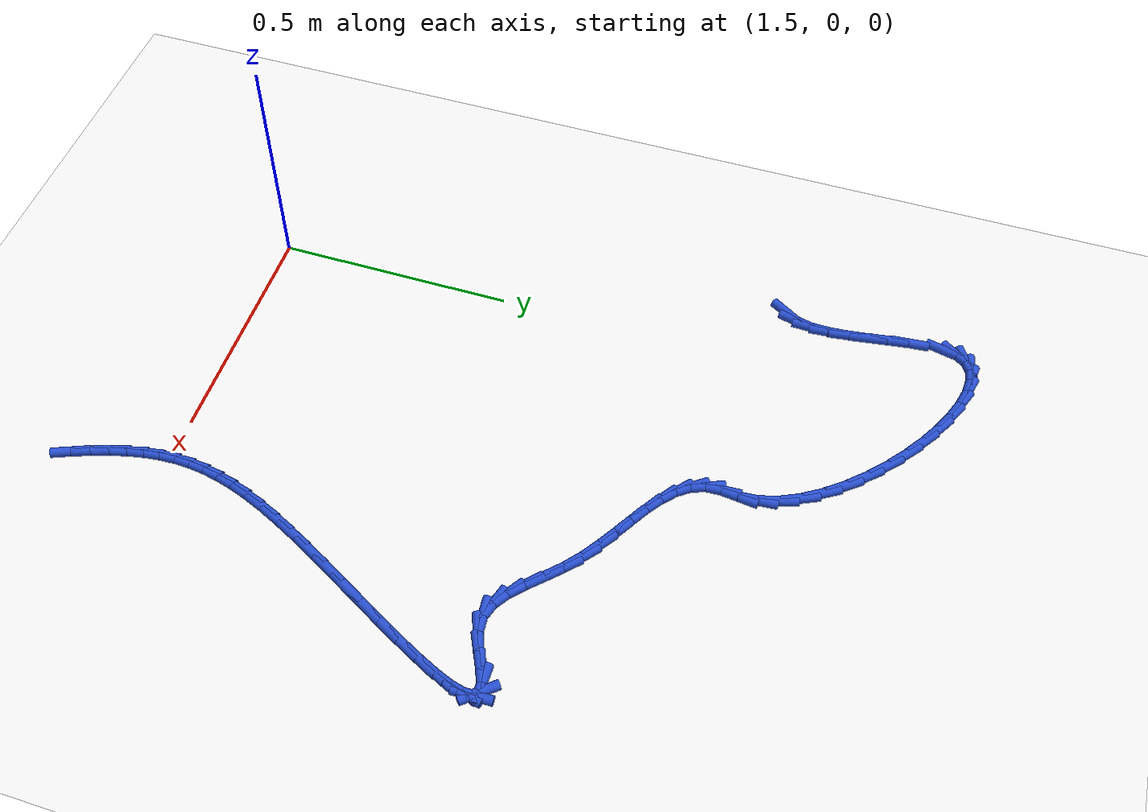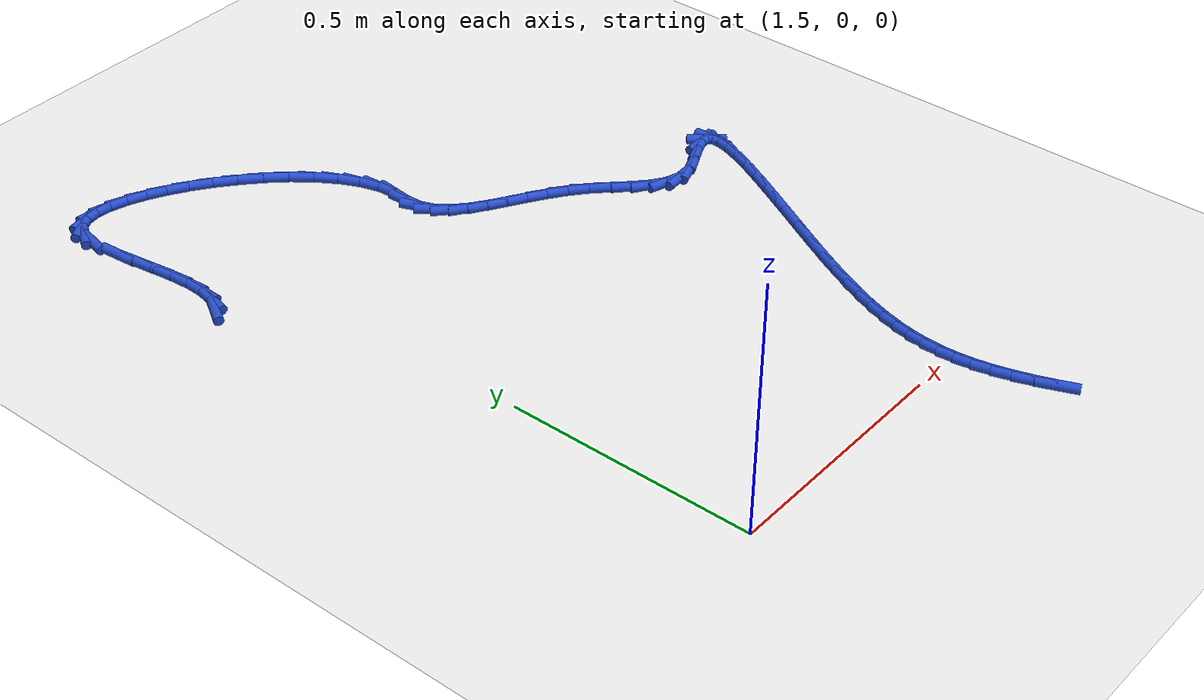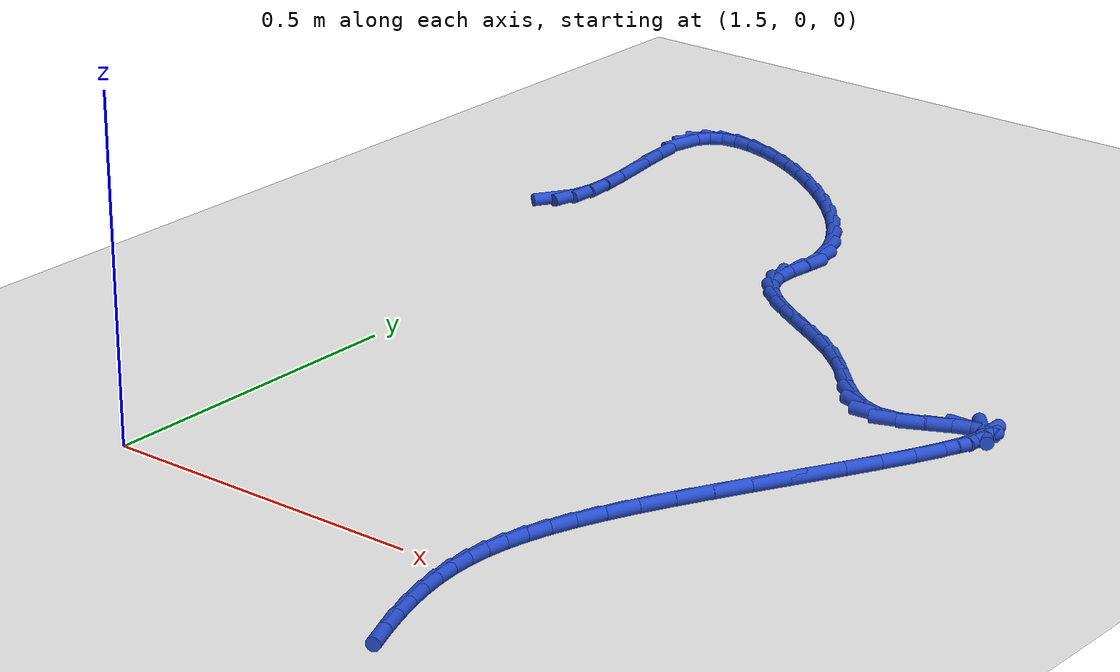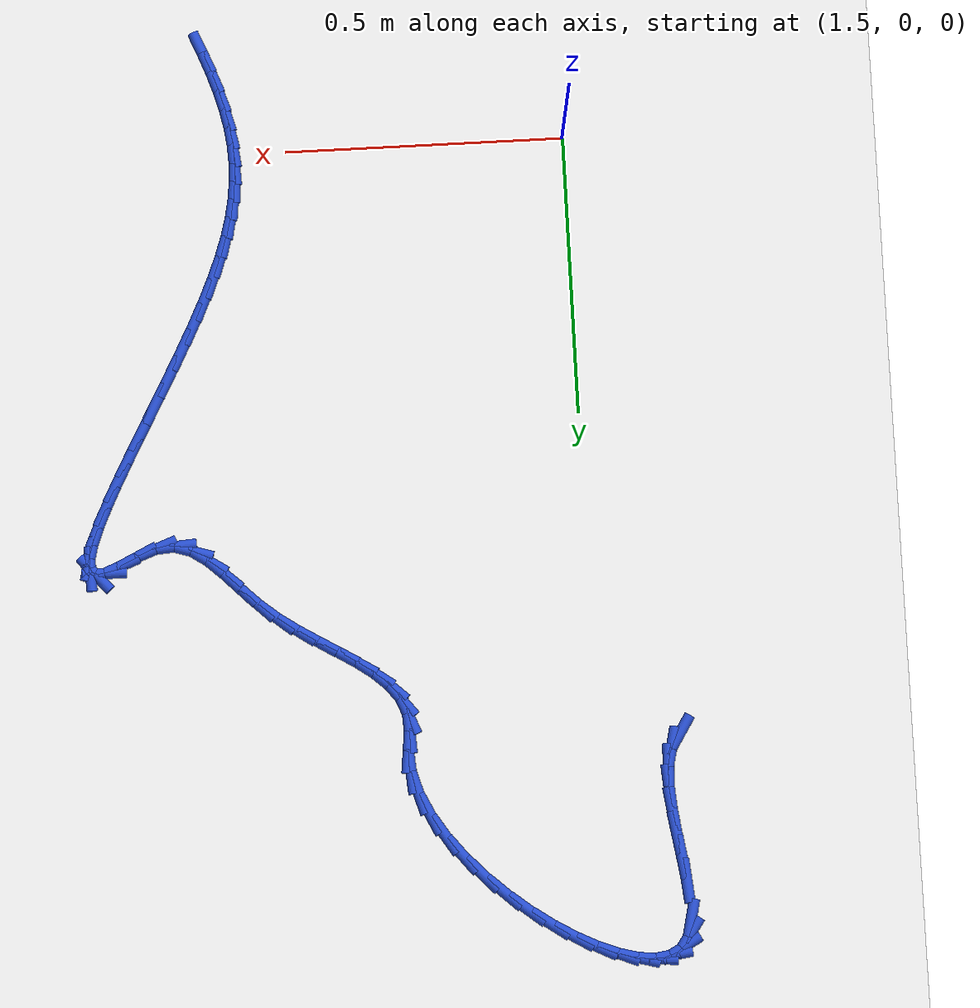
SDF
<sdf version="1.6">
 <world name="default">
  <model name="ground_plane">
   <static>1</static>
   <link name="link">
    <collision name="collision">
     <geometry><plane><normal>0 0 1</normal><size>100 100</size></plane></geometry>
     <surface><friction><ode><mu>100</mu><mu2>50</mu2></ode></friction></surface>
    </collision>
    <visual name="visual">
     <cast_shadows>0</cast_shadows>
     <geometry><plane><normal>0 0 1</normal><size>100 100</size></plane></geometry>
     <material>
      <script><uri>file://media/materials/scripts/gazebo.material</uri><name>Gazebo/WhiteGlow</name></script>
     </material>
    </visual>
   </link>
  </model>
  <model name="line">
   <link name="link_64">
    <pose>1.3541020919847546 1.090133616776462 0.01 0 1.57 1.0114527236162802</pose>
    <collision name="collision">
     <geometry><cylinder><radius>0.01</radius><length>0.08</length></cylinder></geometry>
    </collision>
    <visual name="visual">
     <material>
      <script><name>Gazebo/Blue</name><uri>file://media/materials/scripts/gazebo.material</uri></script>
     </material>
     <geometry><cylinder><radius>0.01</radius><length>0.08</length></cylinder></geometry>
    </visual>
   </link>
   <link name="link_65">
    <pose>1.368814050372023 1.1136338147988292 0.01 0 1.57 1.3456189995589798</pose>
    <collision name="collision">
     <geometry><cylinder><radius>0.01</radius><length>0.08</length></cylinder></geometry>
    </collision>
    <visual name="visual">
     <material>
      <script><name>Gazebo/Blue</name><uri>file://media/materials/scripts/gazebo.material</uri></script>
     </material>
     <geometry><cylinder><radius>0.01</radius><length>0.08</length></cylinder></geometry>
    </visual>
   </link>
   <link name="link_66">
    <pose>1.3758993001423114 1.1445653964326998 0.01 0 1.57 1.5400175159806568</pose>
    <collision name="collision">
     <geometry><cylinder><radius>0.01</radius><length>0.08</length></cylinder></geometry>
    </collision>
    <visual name="visual">
     <material>
      <script><name>Gazebo/Blue</name><uri>file://media/materials/scripts/gazebo.material</uri></script>
     </material>
     <geometry><cylinder><radius>0.01</radius><length>0.08</length></cylinder></geometry>
    </visual>
   </link>
   <link name="link_67">
    <pose>1.377026693348663 1.1811827038474247 0.01 0 1.57 -1.4929996170355078</pose>
    <collision name="collision">
     <geometry><cylinder><radius>0.01</radius><length>0.08</length></cylinder></geometry>
    </collision>
    <visual name="visual">
     <material>
      <script><name>Gazebo/Blue</name><uri>file://media/materials/scripts/gazebo.material</uri></script>
     </material>
     <geometry><cylinder><radius>0.01</radius><length>0.08</length></cylinder></geometry>
    </visual>
   </link>
   <link name="link_68">
    <pose>1.3738650820441183 1.2217400792123556 0.01 0 1.57 -1.436371619667582</pose>
    <collision name="collision">
     <geometry><cylinder><radius>0.01</radius><length>0.08</length></cylinder></geometry>
    </collision>
    <visual name="visual">
     <material>
      <script><name>Gazebo/Blue</name><uri>file://media/materials/scripts/gazebo.material</uri></script>
     </material>
     <geometry><cylinder><radius>0.01</radius><length>0.08</length></cylinder></geometry>
    </visual>
   </link>
   <link name="link_69">
    <pose>1.3680833182817191 1.2644918646968437 0.01 0 1.57 -1.4161841920375353</pose>
    <collision name="collision">
     <geometry><cylinder><radius>0.01</radius><length>0.08</length></cylinder></geometry>
    </collision>
    <visual name="visual">
     <material>
      <script><name>Gazebo/Blue</name><uri>file://media/materials/scripts/gazebo.material</uri></script>
     </material>
     <geometry><cylinder><radius>0.01</radius><length>0.08</length></cylinder></geometry>
    </visual>
   </link>
   <link name="link_70">
    <pose>1.3613502541145073 1.3076924024702399 0.01 0 1.57 -1.428214583452618</pose>
    <collision name="collision">
     <geometry><cylinder><radius>0.01</radius><length>0.08</length></cylinder></geometry>
    </collision>
    <visual name="visual">
     <material>
      <script><name>Gazebo/Blue</name><uri>file://media/materials/scripts/gazebo.material</uri></script>
     </material>
     <geometry><cylinder><radius>0.01</radius><length>0.08</length></cylinder></geometry>
    </visual>
   </link>
   <link name="link_71">
    <pose>1.3553347415955237 1.3495960347018958 0.01 0 1.57 -1.4776796456335275</pose>
    <collision name="collision">
     <geometry><cylinder><radius>0.01</radius><length>0.08</length></cylinder></geometry>
    </collision>
    <visual name="visual">
     <material>
      <script><name>Gazebo/Blue</name><uri>file://media/materials/scripts/gazebo.material</uri></script>
     </material>
     <geometry><cylinder><radius>0.01</radius><length>0.08</length></cylinder></geometry>
    </visual>
   </link>
   <link name="link_73">
    <pose>1.3521317797144086 1.4225299512173923 0.01 0 1.57 1.3510727814411303</pose>
    <collision name="collision">
     <geometry><cylinder><radius>0.01</radius><length>0.08</length></cylinder></geometry>
    </collision>
    <visual name="visual">
     <material>
      <script><name>Gazebo/Blue</name><uri>file://media/materials/scripts/gazebo.material</uri></script>
     </material>
     <geometry><cylinder><radius>0.01</radius><length>0.08</length></cylinder></geometry>
    </visual>
   </link>
   <link name="link_74">
    <pose>1.35828203445836 1.4500689198399352 0.01 0 1.57 0.972160265118087</pose>
    <collision name="collision">
     <geometry><cylinder><radius>0.01</radius><length>0.08</length></cylinder></geometry>
    </collision>
    <visual name="visual">
     <material>
      <script><name>Gazebo/Blue</name><uri>file://media/materials/scripts/gazebo.material</uri></script>
     </material>
     <geometry><cylinder><radius>0.01</radius><length>0.08</length></cylinder></geometry>
    </visual>
   </link>
   <link name="link_75">
    <pose>1.371571825449991 1.469551521705287 0.01 0 1.57 0.5154134863984006</pose>
    <collision name="collision">
     <geometry><cylinder><radius>0.01</radius><length>0.08</length></cylinder></geometry>
    </collision>
    <visual name="visual">
     <material>
      <script><name>Gazebo/Blue</name><uri>file://media/materials/scripts/gazebo.material</uri></script>
     </material>
     <geometry><cylinder><radius>0.01</radius><length>0.08</length></cylinder></geometry>
    </visual>
   </link>
   <link name="link_76">
    <pose>1.391709012669654 1.4809589894105692 0.01 0 1.57 0.15025891584090373</pose>
    <collision name="collision">
     <geometry><cylinder><radius>0.01</radius><length>0.08</length></cylinder></geometry>
    </collision>
    <visual name="visual">
     <material>
      <script><name>Gazebo/Blue</name><uri>file://media/materials/scripts/gazebo.material</uri></script>
     </material>
     <geometry><cylinder><radius>0.01</radius><length>0.08</length></cylinder></geometry>
    </visual>
   </link>
   <link name="link_77">
    <pose>1.4176963624573249 1.484893475685734 0.01 0 1.57 -0.09486906839246771</pose>
    <collision name="collision">
     <geometry><cylinder><radius>0.01</radius><length>0.08</length></cylinder></geometry>
    </collision>
    <visual name="visual">
     <material>
      <script><name>Gazebo/Blue</name><uri>file://media/materials/scripts/gazebo.material</uri></script>
     </material>
     <geometry><cylinder><radius>0.01</radius><length>0.08</length></cylinder></geometry>
    </visual>
   </link>
   <link name="link_78">
    <pose>1.448534419925424 1.4819590893199404 0.01 0 1.57 -0.25922034690091217</pose>
    <collision name="collision">
     <geometry><cylinder><radius>0.01</radius><length>0.08</length></cylinder></geometry>
    </collision>
    <visual name="visual">
     <material>
      <script><name>Gazebo/Blue</name><uri>file://media/materials/scripts/gazebo.material</uri></script>
     </material>
     <geometry><cylinder><radius>0.01</radius><length>0.08</length></cylinder></geometry>
    </visual>
   </link>
   <link name="link_79">
    <pose>1.483223730186373 1.4727599391023487 0.01 0 1.57 -0.37690427984373365</pose>
    <collision name="collision">
     <geometry><cylinder><radius>0.01</radius><length>0.08</length></cylinder></geometry>
    </collision>
    <visual name="visual">
     <material>
      <script><name>Gazebo/Blue</name><uri>file://media/materials/scripts/gazebo.material</uri></script>
     </material>
     <geometry><cylinder><radius>0.01</radius><length>0.08</length></cylinder></geometry>
    </visual>
   </link>
   <link name="link_80">
    <pose>1.5207648383525934 1.4579001338221178 0.01 0 1.57 -0.4680978070070829</pose>
    <collision name="collision">
     <geometry><cylinder><radius>0.01</radius><length>0.08</length></cylinder></geometry>
    </collision>
    <visual name="visual">
     <material>
      <script><name>Gazebo/Blue</name><uri>file://media/materials/scripts/gazebo.material</uri></script>
     </material>
     <geometry><cylinder><radius>0.01</radius><length>0.08</length></cylinder></geometry>
    </visual>
   </link>
   <link name="link_81">
    <pose>1.5601582895365063 1.4379837822684087 0.01 0 1.57 -0.5444470903858615</pose>
    <collision name="collision">
     <geometry><cylinder><radius>0.01</radius><length>0.08</length></cylinder></geometry>
    </collision>
    <visual name="visual">
     <material>
      <script><name>Gazebo/Blue</name><uri>file://media/materials/scripts/gazebo.material</uri></script>
     </material>
     <geometry><cylinder><radius>0.01</radius><length>0.08</length></cylinder></geometry>
    </visual>
   </link>
   <link name="link_82">
    <pose>1.6004046288505325 1.41361499323038 0.01 0 1.57 -0.6131866549139202</pose>
    <collision name="collision">
     <geometry><cylinder><radius>0.01</radius><length>0.08</length></cylinder></geometry>
    </collision>
    <visual name="visual">
     <material>
      <script><name>Gazebo/Blue</name><uri>file://media/materials/scripts/gazebo.material</uri></script>
     </material>
     <geometry><cylinder><radius>0.01</radius><length>0.08</length></cylinder></geometry>
    </visual>
   </link>
   <link name="link_83">
    <pose>1.6405044014070935 1.3853978754971918 0.01 0 1.57 -0.6793934941947337</pose>
    <collision name="collision">
     <geometry><cylinder><radius>0.01</radius><length>0.08</length></cylinder></geometry>
    </collision>
    <visual name="visual">
     <material>
      <script><name>Gazebo/Blue</name><uri>file://media/materials/scripts/gazebo.material</uri></script>
     </material>
     <geometry><cylinder><radius>0.01</radius><length>0.08</length></cylinder></geometry>
    </visual>
   </link>
   <link name="link_84">
    <pose>1.679458152318611 1.353936537858003 0.01 0 1.57 -0.7472438470786577</pose>
    <collision name="collision">
     <geometry><cylinder><radius>0.01</radius><length>0.08</length></cylinder></geometry>
    </collision>
    <visual name="visual">
     <material>
      <script><name>Gazebo/Blue</name><uri>file://media/materials/scripts/gazebo.material</uri></script>
     </material>
     <geometry><cylinder><radius>0.01</radius><length>0.08</length></cylinder></geometry>
    </visual>
   </link>
   <link name="link_85">
    <pose>1.7162664266975052 1.3198350891019746 0.01 0 1.57 -0.820828602402958</pose>
    <collision name="collision">
     <geometry><cylinder><radius>0.01</radius><length>0.08</length></cylinder></geometry>
    </collision>
    <visual name="visual">
     <material>
      <script><name>Gazebo/Blue</name><uri>file://media/materials/scripts/gazebo.material</uri></script>
     </material>
     <geometry><cylinder><radius>0.01</radius><length>0.08</length></cylinder></geometry>
    </visual>
   </link>
   <link name="link_86">
    <pose>1.7499297696561986 1.2836976380182648 0.01 0 1.57 -0.9048240303686227</pose>
    <collision name="collision">
     <geometry><cylinder><radius>0.01</radius><length>0.08</length></cylinder></geometry>
    </collision>
    <visual name="visual">
     <material>
      <script><name>Gazebo/Blue</name><uri>file://media/materials/scripts/gazebo.material</uri></script>
     </material>
     <geometry><cylinder><radius>0.01</radius><length>0.08</length></cylinder></geometry>
    </visual>
   </link>
   <link name="link_87">
    <pose>1.7794487263071121 1.2461282933960336 0.01 0 1.57 -1.0051693718076067</pose>
    <collision name="collision">
     <geometry><cylinder><radius>0.01</radius><length>0.08</length></cylinder></geometry>
    </collision>
    <visual name="visual">
     <material>
      <script><name>Gazebo/Blue</name><uri>file://media/materials/scripts/gazebo.material</uri></script>
     </material>
     <geometry><cylinder><radius>0.01</radius><length>0.08</length></cylinder></geometry>
    </visual>
   </link>
   <link name="link_88">
    <pose>1.8038238417626666 1.2077311640244413 0.01 0 1.57 -1.1297392921008795</pose>
    <collision name="collision">
     <geometry><cylinder><radius>0.01</radius><length>0.08</length></cylinder></geometry>
    </collision>
    <visual name="visual">
     <material>
      <script><name>Gazebo/Blue</name><uri>file://media/materials/scripts/gazebo.material</uri></script>
     </material>
     <geometry><cylinder><radius>0.01</radius><length>0.08</length></cylinder></geometry>
    </visual>
   </link>
   <link name="link_89">
    <pose>1.8220556611352836 1.1691103586926466 0.01 0 1.57 -1.2885543337163314</pose>
    <collision name="collision">
     <geometry><cylinder><radius>0.01</radius><length>0.08</length></cylinder></geometry>
    </collision>
    <visual name="visual">
     <material>
      <script><name>Gazebo/Blue</name><uri>file://media/materials/scripts/gazebo.material</uri></script>
     </material>
     <geometry><cylinder><radius>0.01</radius><length>0.08</length></cylinder></geometry>
    </visual>
   </link>
   <link name="link_90">
    <pose>1.8331447295373846 1.13086998618981 0.01 0 1.57 -1.4918626468097937</pose>
    <collision name="collision">
     <geometry><cylinder><radius>0.01</radius><length>0.08</length></cylinder></geometry>
    </collision>
    <visual name="visual">
     <material>
      <script><name>Gazebo/Blue</name><uri>file://media/materials/scripts/gazebo.material</uri></script>
     </material>
     <geometry><cylinder><radius>0.01</radius><length>0.08</length></cylinder></geometry>
    </visual>
   </link>
   <link name="link_91">
    <pose>1.8360915920813903 1.0936141553050907 0.01 0 1.57 1.4588392027447934</pose>
    <collision name="collision">
     <geometry><cylinder><radius>0.01</radius><length>0.08</length></cylinder></geometry>
    </collision>
    <visual name="visual">
     <material>
      <script><name>Gazebo/Blue</name><uri>file://media/materials/scripts/gazebo.material</uri></script>
     </material>
     <geometry><cylinder><radius>0.01</radius><length>0.08</length></cylinder></geometry>
    </visual>
   </link>
   <link name="link_92">
    <pose>1.8321098681054742 1.0581981518948549 0.01 0 1.57 -1.5114675759343479</pose>
    <collision name="collision">
     <geometry><cylinder><radius>0.01</radius><length>0.08</length></cylinder></geometry>
    </collision>
    <visual name="visual">
     <material>
      <script><name>Gazebo/Blue</name><uri>file://media/materials/scripts/gazebo.material</uri></script>
     </material>
     <geometry><cylinder><radius>0.01</radius><length>0.08</length></cylinder></geometry>
    </visual>
   </link>
   <link name="link_93">
    <pose>1.8339861904233028 1.026609414824376 0.01 0 1.57 -1.190859288868479</pose>
    <collision name="collision">
     <geometry><cylinder><radius>0.01</radius><length>0.08</length></cylinder></geometry>
    </collision>
    <visual name="visual">
     <material>
      <script><name>Gazebo/Blue</name><uri>file://media/materials/scripts/gazebo.material</uri></script>
     </material>
     <geometry><cylinder><radius>0.01</radius><length>0.08</length></cylinder></geometry>
    </visual>
   </link>
   <link name="link_94">
    <pose>1.8450703027382847 0.9988533168268912 0.01 0 1.57 -0.920122615398627</pose>
    <collision name="collision">
     <geometry><cylinder><radius>0.01</radius><length>0.08</length></cylinder></geometry>
    </collision>
    <visual name="visual">
     <material>
      <script><name>Gazebo/Blue</name><uri>file://media/materials/scripts/gazebo.material</uri></script>
     </material>
     <geometry><cylinder><radius>0.01</radius><length>0.08</length></cylinder></geometry>
    </visual>
   </link>
   <link name="link_95">
    <pose>1.8639105311660122 0.9741048334857149 0.01 0 1.57 -0.7314398927577058</pose>
    <collision name="collision">
     <geometry><cylinder><radius>0.01</radius><length>0.08</length></cylinder></geometry>
    </collision>
    <visual name="visual">
     <material>
      <script><name>Gazebo/Blue</name><uri>file://media/materials/scripts/gazebo.material</uri></script>
     </material>
     <geometry><cylinder><radius>0.01</radius><length>0.08</length></cylinder></geometry>
    </visual>
   </link>
   <link name="link_96">
    <pose>1.8890535204361327 0.9515386499452814 0.01 0 1.57 -0.615510222821835</pose>
    <collision name="collision">
     <geometry><cylinder><radius>0.01</radius><length>0.08</length></cylinder></geometry>
    </collision>
    <visual name="visual">
     <material>
      <script><name>Gazebo/Blue</name><uri>file://media/materials/scripts/gazebo.material</uri></script>
     </material>
     <geometry><cylinder><radius>0.01</radius><length>0.08</length></cylinder></geometry>
    </visual>
   </link>
   <link name="link_97">
    <pose>1.9190459152782937 0.9303294513500258 0.01 0 1.57 -0.5544913293360312</pose>
    <collision name="collision">
     <geometry><cylinder><radius>0.01</radius><length>0.08</length></cylinder></geometry>
    </collision>
    <visual name="visual">
     <material>
      <script><name>Gazebo/Blue</name><uri>file://media/materials/scripts/gazebo.material</uri></script>
     </material>
     <geometry><cylinder><radius>0.01</radius><length>0.08</length></cylinder></geometry>
    </visual>
   </link>
   <link name="link_98">
    <pose>1.9524343604221424 0.9096519228443823 0.01 0 1.57 -0.5356712040785235</pose>
    <collision name="collision">
     <geometry><cylinder><radius>0.01</radius><length>0.08</length></cylinder></geometry>
    </collision>
    <visual name="visual">
     <material>
      <script><name>Gazebo/Blue</name><uri>file://media/materials/scripts/gazebo.material</uri></script>
     </material>
     <geometry><cylinder><radius>0.01</radius><length>0.08</length></cylinder></geometry>
    </visual>
   </link>
   <link name="link_99">
    <pose>1.9877655005973267 0.8886807495727862 0.01 0 1.57 -0.5526012776024204</pose>
    <collision name="collision">
     <geometry><cylinder><radius>0.01</radius><length>0.08</length></cylinder></geometry>
    </collision>
    <visual name="visual">
     <material>
      <script><name>Gazebo/Blue</name><uri>file://media/materials/scripts/gazebo.material</uri></script>
     </material>
     <geometry><cylinder><radius>0.01</radius><length>0.08</length></cylinder></geometry>
    </visual>
   </link>
   <link name="link_100">
    <pose>2.0235859805334937 0.866590616679672 0.01 0 1.57 -0.6036611855316067</pose>
    <collision name="collision">
     <geometry><cylinder><radius>0.01</radius><length>0.08</length></cylinder></geometry>
    </collision>
    <visual name="visual">
     <material>
      <script><name>Gazebo/Blue</name><uri>file://media/materials/scripts/gazebo.material</uri></script>
     </material>
     <geometry><cylinder><radius>0.01</radius><length>0.08</length></cylinder></geometry>
    </visual>
   </link>
   <link name="link_101">
    <pose>2.0584424449602903 0.8425562093094744 0.01 0 1.57 -0.6897416945171051</pose>
    <collision name="collision">
     <geometry><cylinder><radius>0.01</radius><length>0.08</length></cylinder></geometry>
    </collision>
    <visual name="visual">
     <material>
      <script><name>Gazebo/Blue</name><uri>file://media/materials/scripts/gazebo.material</uri></script>
     </material>
     <geometry><cylinder><radius>0.01</radius><length>0.08</length></cylinder></geometry>
    </visual>
   </link>
   <link name="link_102">
    <pose>2.090901855202744 0.8157803788328609 0.01 0 1.57 -0.7722757228439698</pose>
    <collision name="collision">
     <geometry><cylinder><radius>0.01</radius><length>0.08</length></cylinder></geometry>
    </collision>
    <visual name="visual">
     <material>
      <script><name>Gazebo/Blue</name><uri>file://media/materials/scripts/gazebo.material</uri></script>
     </material>
     <geometry><cylinder><radius>0.01</radius><length>0.08</length></cylinder></geometry>
    </visual>
   </link>
   <link name="link_103">
    <pose>2.1205592640238176 0.7868912870866046 0.01 0 1.57 -0.7918349254106977</pose>
    <collision name="collision">
     <geometry><cylinder><radius>0.01</radius><length>0.08</length></cylinder></geometry>
    </collision>
    <visual name="visual">
     <material>
      <script><name>Gazebo/Blue</name><uri>file://media/materials/scripts/gazebo.material</uri></script>
     </material>
     <geometry><cylinder><radius>0.01</radius><length>0.08</length></cylinder></geometry>
    </visual>
   </link>
   <link name="link_104">
    <pose>2.1485022328118357 0.7585862583243415 0.01 0 1.57 -0.7362492594389861</pose>
    <collision name="collision">
     <geometry><cylinder><radius>0.01</radius><length>0.08</length></cylinder></geometry>
    </collision>
    <visual name="visual">
     <material>
      <script><name>Gazebo/Blue</name><uri>file://media/materials/scripts/gazebo.material</uri></script>
     </material>
     <geometry><cylinder><radius>0.01</radius><length>0.08</length></cylinder></geometry>
    </visual>
   </link>
   <link name="link_105">
    <pose>2.175935587719647 0.7337251886196996 0.01 0 1.57 -0.5831837930201456</pose>
    <collision name="collision">
     <geometry><cylinder><radius>0.01</radius><length>0.08</length></cylinder></geometry>
    </collision>
    <visual name="visual">
     <material>
      <script><name>Gazebo/Blue</name><uri>file://media/materials/scripts/gazebo.material</uri></script>
     </material>
     <geometry><cylinder><radius>0.01</radius><length>0.08</length></cylinder></geometry>
    </visual>
   </link>
   <link name="link_106">
    <pose>2.2040641549001005 0.7151679740463074 0.01 0 1.57 -0.3031737926018645</pose>
    <collision name="collision">
     <geometry><cylinder><radius>0.01</radius><length>0.08</length></cylinder></geometry>
    </collision>
    <visual name="visual">
     <material>
      <script><name>Gazebo/Blue</name><uri>file://media/materials/scripts/gazebo.material</uri></script>
     </material>
     <geometry><cylinder><radius>0.01</radius><length>0.08</length></cylinder></geometry>
    </visual>
   </link>
   <link name="link_107">
    <pose>2.2340927605060474 0.7057745106777928 0.01 0 1.57 0.07734030213240427</pose>
    <collision name="collision">
     <geometry><cylinder><radius>0.01</radius><length>0.08</length></cylinder></geometry>
    </collision>
    <visual name="visual">
     <material>
      <script><name>Gazebo/Blue</name><uri>file://media/materials/scripts/gazebo.material</uri></script>
     </material>
     <geometry><cylinder><radius>0.01</radius><length>0.08</length></cylinder></geometry>
    </visual>
   </link>
   <link name="link_108">
    <pose>2.267192204592315 0.7083395480004232 0.01 0 1.57 0.35813301874053904</pose>
    <collision name="collision">
     <geometry><cylinder><radius>0.01</radius><length>0.08</length></cylinder></geometry>
    </collision>
    <visual name="visual">
     <material>
      <script><name>Gazebo/Blue</name><uri>file://media/materials/scripts/gazebo.material</uri></script>
     </material>
     <geometry><cylinder><radius>0.01</radius><length>0.08</length></cylinder></geometry>
    </visual>
   </link>
   <link name="link_109">
    <pose>2.3023632806920595 0.7215031269777699 0.01 0 1.57 0.4492757053800478</pose>
    <collision name="collision">
     <geometry><cylinder><radius>0.01</radius><length>0.08</length></cylinder></geometry>
    </collision>
    <visual name="visual">
     <material>
      <script><name>Gazebo/Blue</name><uri>file://media/materials/scripts/gazebo.material</uri></script>
     </material>
     <geometry><cylinder><radius>0.01</radius><length>0.08</length></cylinder></geometry>
    </visual>
   </link>
   <link name="link_110">
    <pose>2.335167263382707 0.7373199633328557 0.01 0 1.57 0.37230978188198716</pose>
    <collision name="collision">
     <geometry><cylinder><radius>0.01</radius><length>0.08</length></cylinder></geometry>
    </collision>
    <visual name="visual">
     <material>
      <script><name>Gazebo/Blue</name><uri>file://media/materials/scripts/gazebo.material</uri></script>
     </material>
     <geometry><cylinder><radius>0.01</radius><length>0.08</length></cylinder></geometry>
    </visual>
   </link>
   <link name="link_111">
    <pose>2.3609325577763167 0.7473818984888538 0.01 0 1.57 0.00015405206376531766</pose>
    <collision name="collision">
     <geometry><cylinder><radius>0.01</radius><length>0.08</length></cylinder></geometry>
    </collision>
    <visual name="visual">
     <material>
      <script><name>Gazebo/Blue</name><uri>file://media/materials/scripts/gazebo.material</uri></script>
     </material>
     <geometry><cylinder><radius>0.01</radius><length>0.08</length></cylinder></geometry>
    </visual>
   </link>
   <link name="link_112">
    <pose>2.3774325122443805 0.7473844403409118 0.01 0 1.57 -0.8637239263918048</pose>
    <collision name="collision">
     <geometry><cylinder><radius>0.01</radius><length>0.08</length></cylinder></geometry>
    </collision>
    <visual name="visual">
     <material>
      <script><name>Gazebo/Blue</name><uri>file://media/materials/scripts/gazebo.material</uri></script>
     </material>
     <geometry><cylinder><radius>0.01</radius><length>0.08</length></cylinder></geometry>
    </visual>
   </link>
   <link name="link_113">
    <pose>2.3854243265220885 0.7380312828642819 0.01 0 1.57 -1.5469566853868193</pose>
    <collision name="collision">
     <geometry><cylinder><radius>0.01</radius><length>0.08</length></cylinder></geometry>
    </collision>
    <visual name="visual">
     <material>
      <script><name>Gazebo/Blue</name><uri>file://media/materials/scripts/gazebo.material</uri></script>
     </material>
     <geometry><cylinder><radius>0.01</radius><length>0.08</length></cylinder></geometry>
    </visual>
   </link>
   <link name="link_114">
    <pose>2.385846393014348 0.7203302392733112 0.01 0 1.57 1.3277350603809395</pose>
    <collision name="collision">
     <geometry><cylinder><radius>0.01</radius><length>0.08</length></cylinder></geometry>
    </collision>
    <visual name="visual">
     <material>
      <script><name>Gazebo/Blue</name><uri>file://media/materials/scripts/gazebo.material</uri></script>
     </material>
     <geometry><cylinder><radius>0.01</radius><length>0.08</length></cylinder></geometry>
    </visual>
   </link>
   <link name="link_115">
    <pose>2.3796371041260675 0.6952891227823479 0.01 0 1.57 1.2081962010259297</pose>
    <collision name="collision">
     <geometry><cylinder><radius>0.01</radius><length>0.08</length></cylinder></geometry>
    </collision>
    <visual name="visual">
     <material>
      <script><name>Gazebo/Blue</name><uri>file://media/materials/scripts/gazebo.material</uri></script>
     </material>
     <geometry><cylinder><radius>0.01</radius><length>0.08</length></cylinder></geometry>
    </visual>
   </link>
   <link name="link_116">
    <pose>2.3677348522621524 0.6639157466057386 0.01 0 1.57 1.144711108896285</pose>
    <collision name="collision">
     <geometry><cylinder><radius>0.01</radius><length>0.08</length></cylinder></geometry>
    </collision>
    <visual name="visual">
     <material>
      <script><name>Gazebo/Blue</name><uri>file://media/materials/scripts/gazebo.material</uri></script>
     </material>
     <geometry><cylinder><radius>0.01</radius><length>0.08</length></cylinder></geometry>
    </visual>
   </link>
   <link name="link_117">
    <pose>2.351078029827514 0.6272179239578324 0.01 0 1.57 1.1078165560046473</pose>
    <collision name="collision">
     <geometry><cylinder><radius>0.01</radius><length>0.08</length></cylinder></geometry>
    </collision>
    <visual name="visual">
     <material>
      <script><name>Gazebo/Blue</name><uri>file://media/materials/scripts/gazebo.material</uri></script>
     </material>
     <geometry><cylinder><radius>0.01</radius><length>0.08</length></cylinder></geometry>
    </visual>
   </link>
   <link name="link_118">
    <pose>2.3306050292270553 0.5862034680529751 0.01 0 1.57 1.0859166115585497</pose>
    <collision name="collision">
     <geometry><cylinder><radius>0.01</radius><length>0.08</length></cylinder></geometry>
    </collision>
    <visual name="visual">
     <material>
      <script><name>Gazebo/Blue</name><uri>file://media/materials/scripts/gazebo.material</uri></script>
     </material>
     <geometry><cylinder><radius>0.01</radius><length>0.08</length></cylinder></geometry>
    </visual>
   </link>
   <link name="link_119">
    <pose>2.307254242865687 0.541880192105515 0.01 0 1.57 1.0737873989590088</pose>
    <collision name="collision">
     <geometry><cylinder><radius>0.01</radius><length>0.08</length></cylinder></geometry>
    </collision>
    <visual name="visual">
     <material>
      <script><name>Gazebo/Blue</name><uri>file://media/materials/scripts/gazebo.material</uri></script>
     </material>
     <geometry><cylinder><radius>0.01</radius><length>0.08</length></cylinder></geometry>
    </visual>
   </link>
   <link name="link_120">
    <pose>2.281964063148315 0.49525590932979907 0.01 0 1.57 1.0689700081131208</pose>
    <collision name="collision">
     <geometry><cylinder><radius>0.01</radius><length>0.08</length></cylinder></geometry>
    </collision>
    <visual name="visual">
     <material>
      <script><name>Gazebo/Blue</name><uri>file://media/materials/scripts/gazebo.material</uri></script>
     </material>
     <geometry><cylinder><radius>0.01</radius><length>0.08</length></cylinder></geometry>
    </visual>
   </link>
   <link name="link_121">
    <pose>2.255672882479848 0.4473384329401757 0.01 0 1.57 1.0704696729092031</pose>
    <collision name="collision">
     <geometry><cylinder><radius>0.01</radius><length>0.08</length></cylinder></geometry>
    </collision>
    <visual name="visual">
     <material>
      <script><name>Gazebo/Blue</name><uri>file://media/materials/scripts/gazebo.material</uri></script>
     </material>
     <geometry><cylinder><radius>0.01</radius><length>0.08</length></cylinder></geometry>
    </visual>
   </link>
   <link name="link_122">
    <pose>2.229319093265193 0.39913557615099193 0.01 0 1.57 1.078299037310551</pose>
    <collision name="collision">
     <geometry><cylinder><radius>0.01</radius><length>0.08</length></cylinder></geometry>
    </collision>
    <visual name="visual">
     <material>
      <script><name>Gazebo/Blue</name><uri>file://media/materials/scripts/gazebo.material</uri></script>
     </material>
     <geometry><cylinder><radius>0.01</radius><length>0.08</length></cylinder></geometry>
    </visual>
   </link>
   <link name="link_123">
    <pose>2.2038410879092574 0.3516551521765952 0.01 0 1.57 1.0934519109965835</pose>
    <collision name="collision">
     <geometry><cylinder><radius>0.01</radius><length>0.08</length></cylinder></geometry>
    </collision>
    <visual name="visual">
     <material>
      <script><name>Gazebo/Blue</name><uri>file://media/materials/scripts/gazebo.material</uri></script>
     </material>
     <geometry><cylinder><radius>0.01</radius><length>0.08</length></cylinder></geometry>
    </visual>
   </link>
   <link name="link_124">
    <pose>2.1801772588169483 0.305904974231334 0.01 0 1.57 1.117900925229196</pose>
    <collision name="collision">
     <geometry><cylinder><radius>0.01</radius><length>0.08</length></cylinder></geometry>
    </collision>
    <visual name="visual">
     <material>
      <script><name>Gazebo/Blue</name><uri>file://media/materials/scripts/gazebo.material</uri></script>
     </material>
     <geometry><cylinder><radius>0.01</radius><length>0.08</length></cylinder></geometry>
    </visual>
   </link>
   <link name="link_125">
    <pose>2.1592022054807805 0.26280239937016525 0.01 0 1.57 1.1513570103455166</pose>
    <collision name="collision">
     <geometry><cylinder><radius>0.01</radius><length>0.08</length></cylinder></geometry>
    </collision>
    <visual name="visual">
     <material>
      <script><name>Gazebo/Blue</name><uri>file://media/materials/scripts/gazebo.material</uri></script>
     </material>
     <geometry><cylinder><radius>0.01</radius><length>0.08</length></cylinder></geometry>
    </visual>
   </link>
   <link name="link_126">
    <pose>2.141197283577669 0.22242358528707742 0.01 0 1.57 1.193435294686082</pose>
    <collision name="collision">
     <geometry><cylinder><radius>0.01</radius><length>0.08</length></cylinder></geometry>
    </collision>
    <visual name="visual">
     <material>
      <script><name>Gazebo/Blue</name><uri>file://media/materials/scripts/gazebo.material</uri></script>
     </material>
     <geometry><cylinder><radius>0.01</radius><length>0.08</length></cylinder></geometry>
    </visual>
   </link>
   <link name="link_127">
    <pose>2.1261214946811715 0.1843876026258077 0.01 0 1.57 1.244944019538499</pose>
    <collision name="collision">
     <geometry><cylinder><radius>0.01</radius><length>0.08</length></cylinder></geometry>
    </collision>
    <visual name="visual">
     <material>
      <script><name>Gazebo/Blue</name><uri>file://media/materials/scripts/gazebo.material</uri></script>
     </material>
     <geometry><cylinder><radius>0.01</radius><length>0.08</length></cylinder></geometry>
    </visual>
   </link>
   <link name="link_128">
    <pose>2.113930628507397 0.1483089677265115 0.01 0 1.57 1.3061845617431798</pose>
    <collision name="collision">
     <geometry><cylinder><radius>0.01</radius><length>0.08</length></cylinder></geometry>
    </collision>
    <visual name="visual">
     <material>
      <script><name>Gazebo/Blue</name><uri>file://media/materials/scripts/gazebo.material</uri></script>
     </material>
     <geometry><cylinder><radius>0.01</radius><length>0.08</length></cylinder></geometry>
    </visual>
   </link>
   <link name="link_129">
    <pose>2.104580474772454 0.11380219692934439 0.01 0 1.57 1.3765894052155216</pose>
    <collision name="collision">
     <geometry><cylinder><radius>0.01</radius><length>0.08</length></cylinder></geometry>
    </collision>
    <visual name="visual">
     <material>
      <script><name>Gazebo/Blue</name><uri>file://media/materials/scripts/gazebo.material</uri></script>
     </material>
     <geometry><cylinder><radius>0.01</radius><length>0.08</length></cylinder></geometry>
    </visual>
   </link>
   <link name="link_130">
    <pose>2.09802682319245 0.0804818065744617 0.01 0 1.57 1.4544296355912378</pose>
    <collision name="collision">
     <geometry><cylinder><radius>0.01</radius><length>0.08</length></cylinder></geometry>
    </collision>
    <visual name="visual">
     <material>
      <script><name>Gazebo/Blue</name><uri>file://media/materials/scripts/gazebo.material</uri></script>
     </material>
     <geometry><cylinder><radius>0.01</radius><length>0.08</length></cylinder></geometry>
    </visual>
   </link>
   <link name="link_131">
    <pose>2.0942254634834936 0.047962313002019 0.01 0 1.57 1.536755302099192</pose>
    <collision name="collision">
     <geometry><cylinder><radius>0.01</radius><length>0.08</length></cylinder></geometry>
    </collision>
    <visual name="visual">
     <material>
      <script><name>Gazebo/Blue</name><uri>file://media/materials/scripts/gazebo.material</uri></script>
     </material>
     <geometry><cylinder><radius>0.01</radius><length>0.08</length></cylinder></geometry>
    </visual>
   </link>
   <link name="link_132">
    <pose>2.0931321853616924 0.015858232552171683 0.01 0 1.57 -1.5218678407264672</pose>
    <collision name="collision">
     <geometry><cylinder><radius>0.01</radius><length>0.08</length></cylinder></geometry>
    </collision>
    <visual name="visual">
     <material>
      <script><name>Gazebo/Blue</name><uri>file://media/materials/scripts/gazebo.material</uri></script>
     </material>
     <geometry><cylinder><radius>0.01</radius><length>0.08</length></cylinder></geometry>
    </visual>
   </link>
   <link name="link_133">
    <pose>2.094702778543155 -0.01621591843492423 0.01 0 1.57 -1.4422979081667273</pose>
    <collision name="collision">
     <geometry><cylinder><radius>0.01</radius><length>0.08</length></cylinder></geometry>
    </collision>
    <visual name="visual">
     <material>
      <script><name>Gazebo/Blue</name><uri>file://media/materials/scripts/gazebo.material</uri></script>
     </material>
     <geometry><cylinder><radius>0.01</radius><length>0.08</length></cylinder></geometry>
    </visual>
   </link>
   <link name="link_134">
    <pose>2.0988930327439905 -0.048645623619114294 0.01 0 1.57 -1.3695901965228157</pose>
    <collision name="collision">
     <geometry><cylinder><radius>0.01</radius><length>0.08</length></cylinder></geometry>
    </collision>
    <visual name="visual">
     <material>
      <script><name>Gazebo/Blue</name><uri>file://media/materials/scripts/gazebo.material</uri></script>
     </material>
     <geometry><cylinder><radius>0.01</radius><length>0.08</length></cylinder></geometry>
    </visual>
   </link>
   <link name="link_135">
    <pose>2.105658737680307 -0.0818163666602426 0.01 0 1.57 -1.3060878474882867</pose>
    <collision name="collision">
     <geometry><cylinder><radius>0.01</radius><length>0.08</length></cylinder></geometry>
    </collision>
    <visual name="visual">
     <material>
      <script><name>Gazebo/Blue</name><uri>file://media/materials/scripts/gazebo.material</uri></script>
     </material>
     <geometry><cylinder><radius>0.01</radius><length>0.08</length></cylinder></geometry>
    </visual>
   </link>
   <link name="link_136">
    <pose>2.114955683068212 -0.11611363121815363 0.01 0 1.57 -1.2528821449931695</pose>
    <collision name="collision">
     <geometry><cylinder><radius>0.01</radius><length>0.08</length></cylinder></geometry>
    </collision>
    <visual name="visual">
     <material>
      <script><name>Gazebo/Blue</name><uri>file://media/materials/scripts/gazebo.material</uri></script>
     </material>
     <geometry><cylinder><radius>0.01</radius><length>0.08</length></cylinder></geometry>
    </visual>
   </link>
   <link name="link_137">
    <pose>2.1267396586238143 -0.1519229009526919 0.01 0 1.57 -1.210009921960712</pose>
    <collision name="collision">
     <geometry><cylinder><radius>0.01</radius><length>0.08</length></cylinder></geometry>
    </collision>
    <visual name="visual">
     <material>
      <script><name>Gazebo/Blue</name><uri>file://media/materials/scripts/gazebo.material</uri></script>
     </material>
     <geometry><cylinder><radius>0.01</radius><length>0.08</length></cylinder></geometry>
    </visual>
   </link>
   <link name="link_138">
    <pose>2.1409664540632214 -0.18962965952370198 0.01 0 1.57 -1.1772863634368875</pose>
    <collision name="collision">
     <geometry><cylinder><radius>0.01</radius><length>0.08</length></cylinder></geometry>
    </collision>
    <visual name="visual">
     <material>
      <script><name>Gazebo/Blue</name><uri>file://media/materials/scripts/gazebo.material</uri></script>
     </material>
     <geometry><cylinder><radius>0.01</radius><length>0.08</length></cylinder></geometry>
    </visual>
   </link>
  </model>
 </world>
</sdf>
